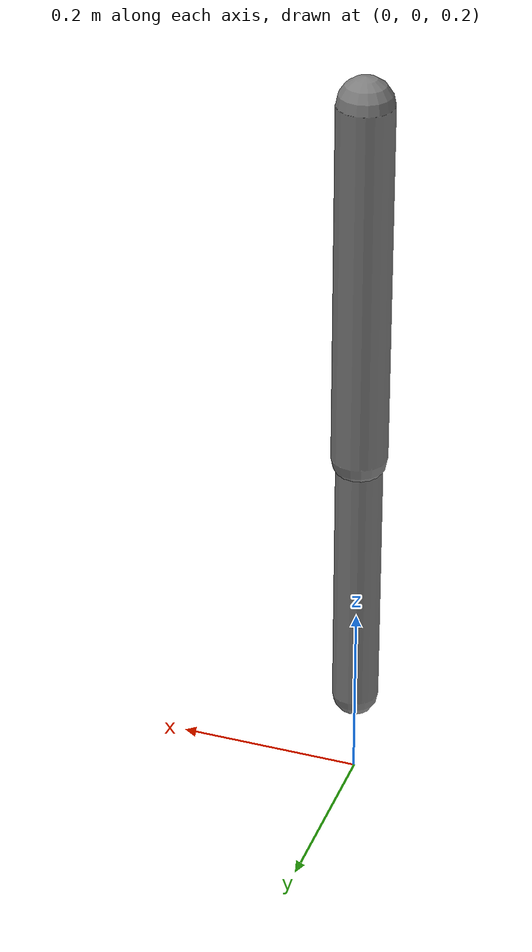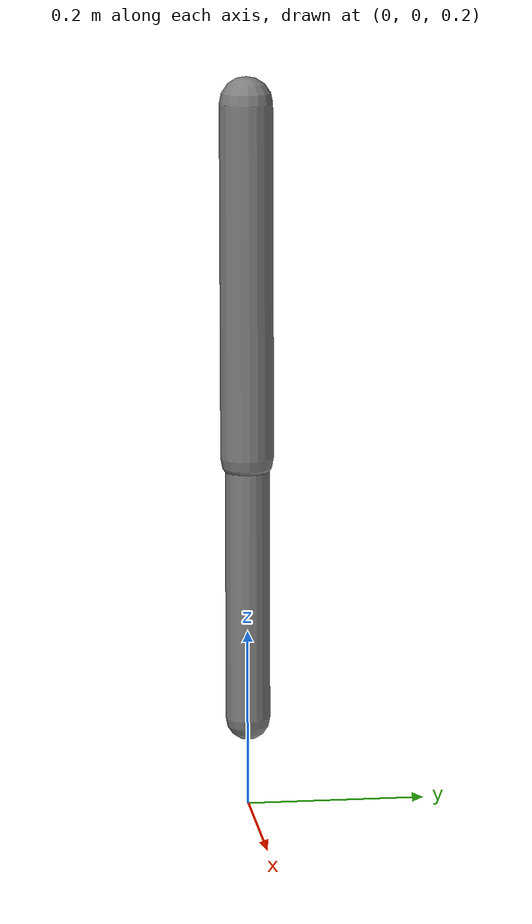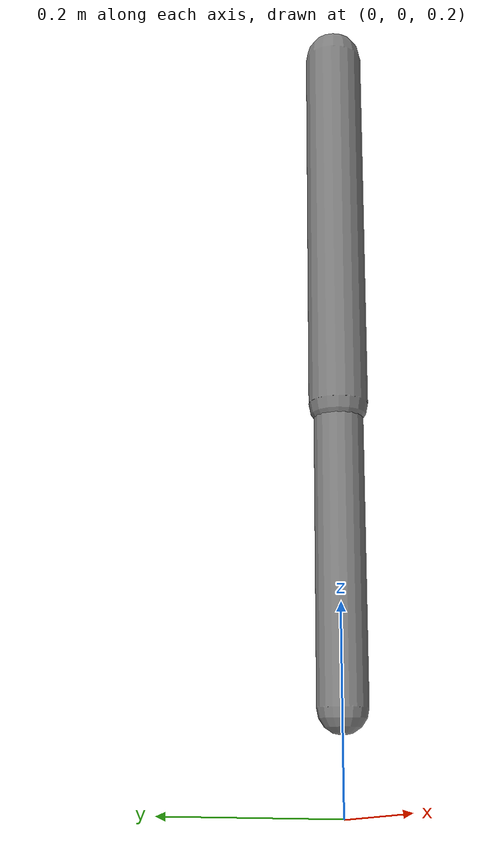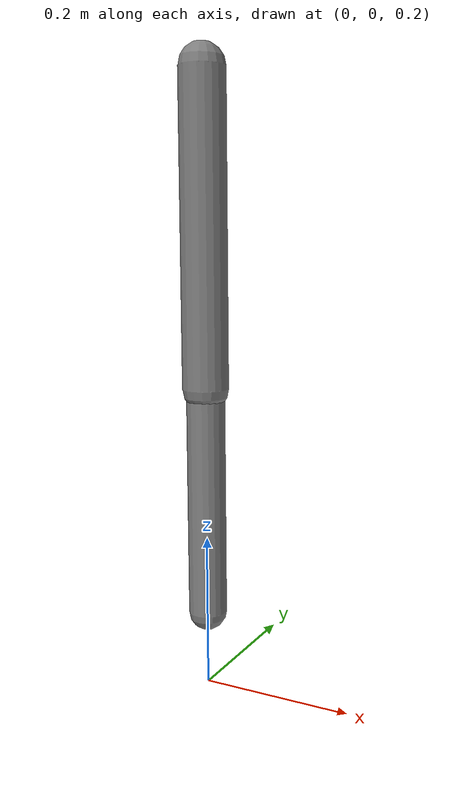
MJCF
<mujoco model="fixed_tendon_mapping">
  <compiler angle="radian"/>
  <option gravity="0 0 0"/>
  <worldbody>
    <body pos="0 0 1">
      <joint name="q1" axis="0 1 0"/>
      <geom type="capsule" fromto="0 0 0 0 0 -.4" size=".03" mass="1"/>
      <body pos="0 0 -.4">
        <joint name="q2" axis="0 1 0"/>
        <geom type="capsule" fromto="0 0 0 0 0 -.3" size=".025" mass=".5"/>
      </body>
    </body>
  </worldbody>
  <tendon>
    <fixed name="differential">
      <joint joint="q1" coef="1"/>
      <joint joint="q2" coef="-2"/>
    </fixed>
  </tendon>
  <actuator><motor name="tendon_motor" tendon="differential" gear="1"/></actuator>
</mujoco>
